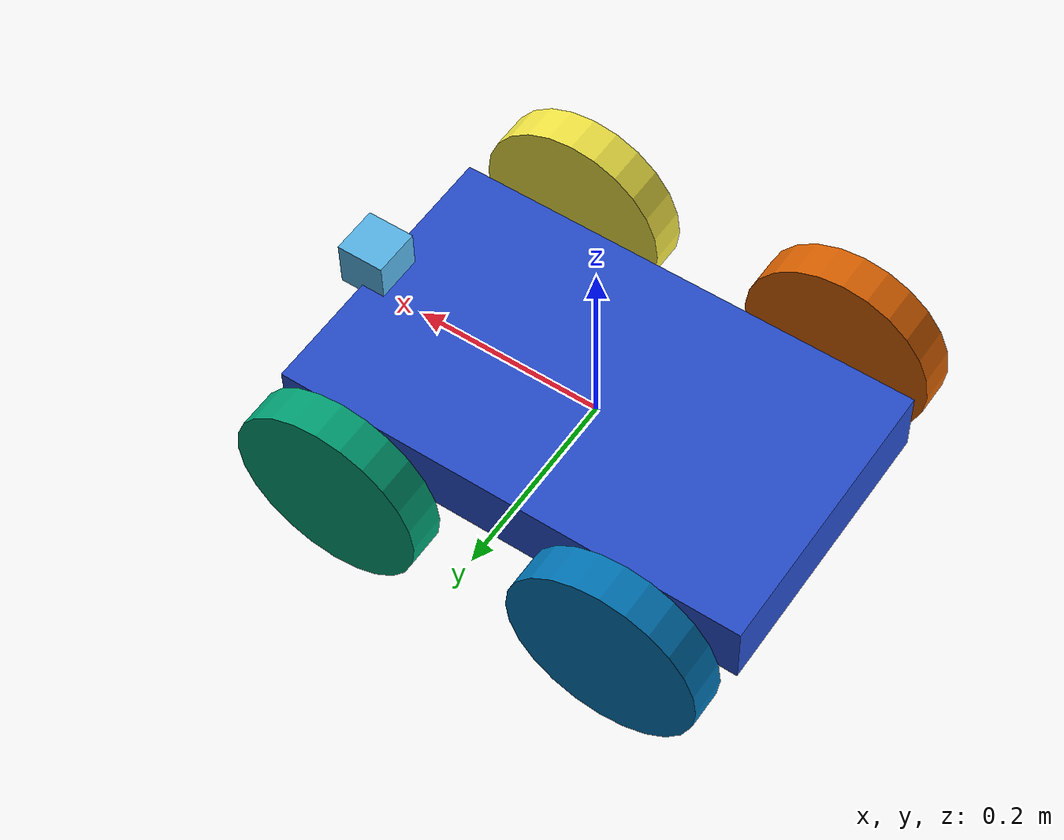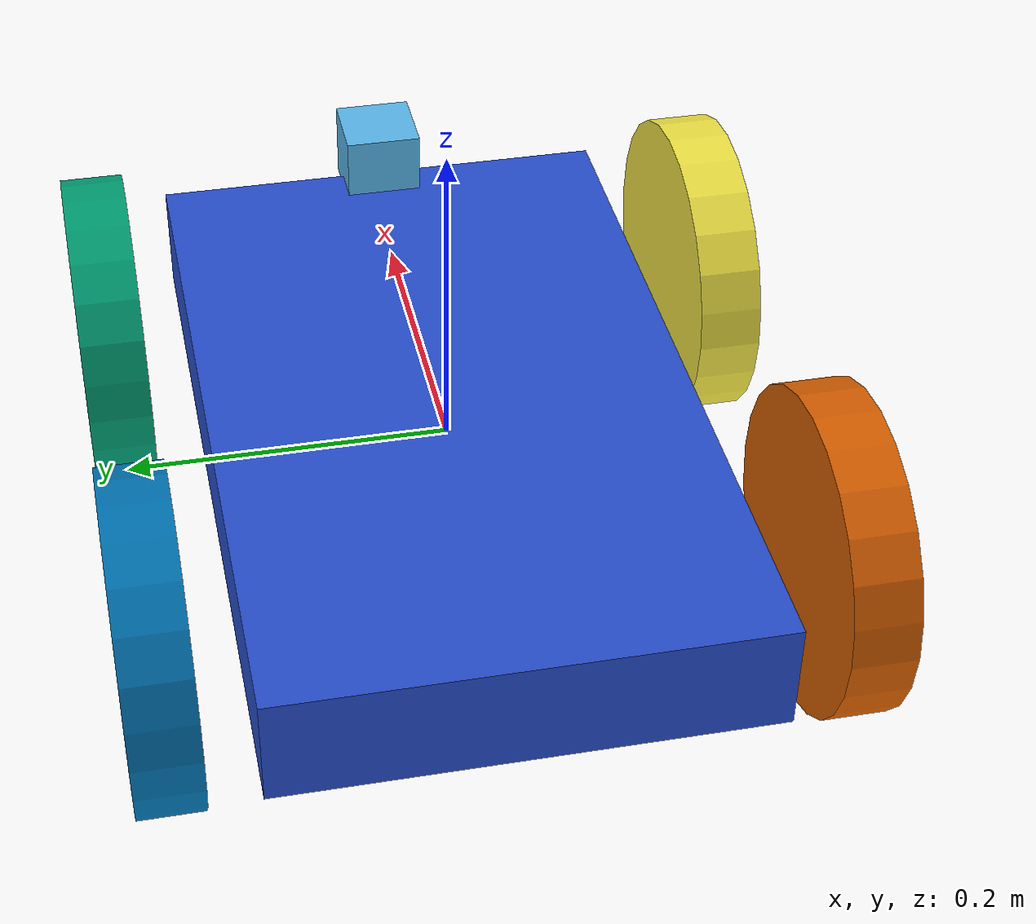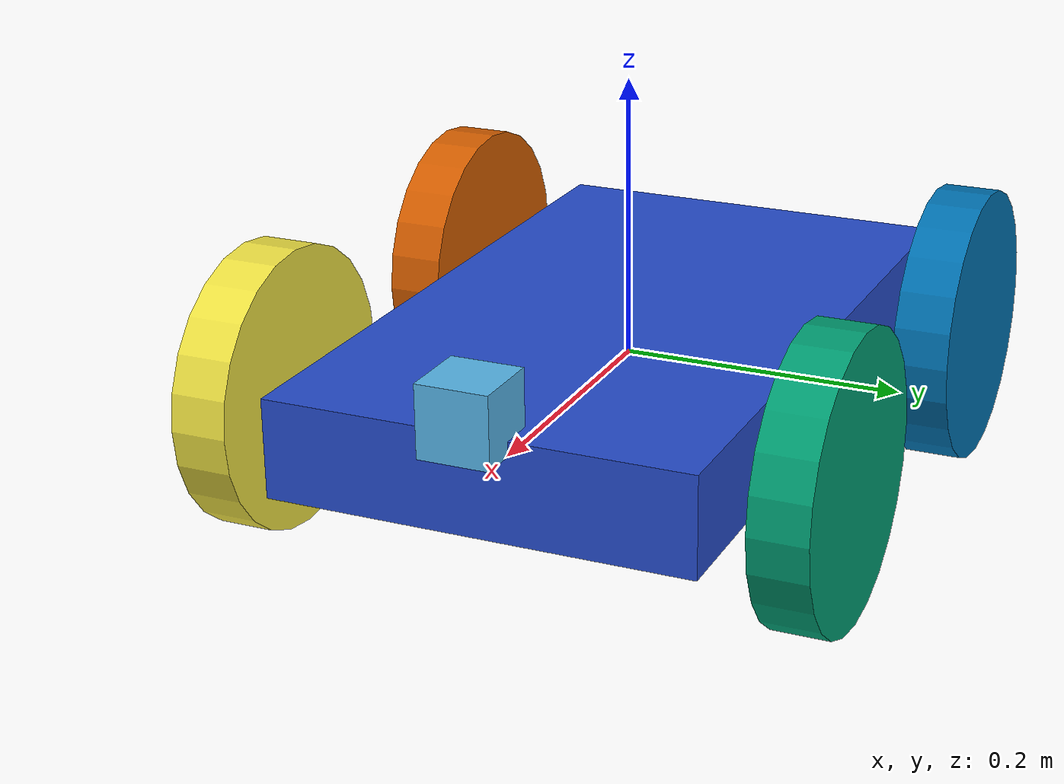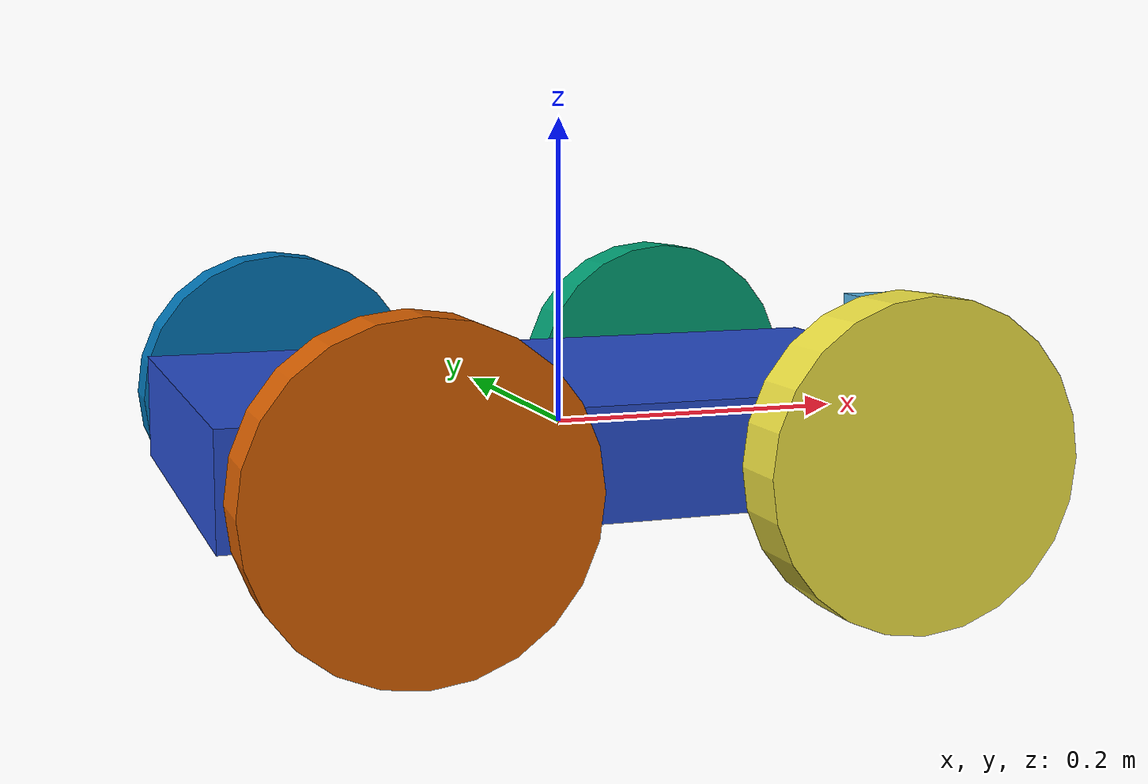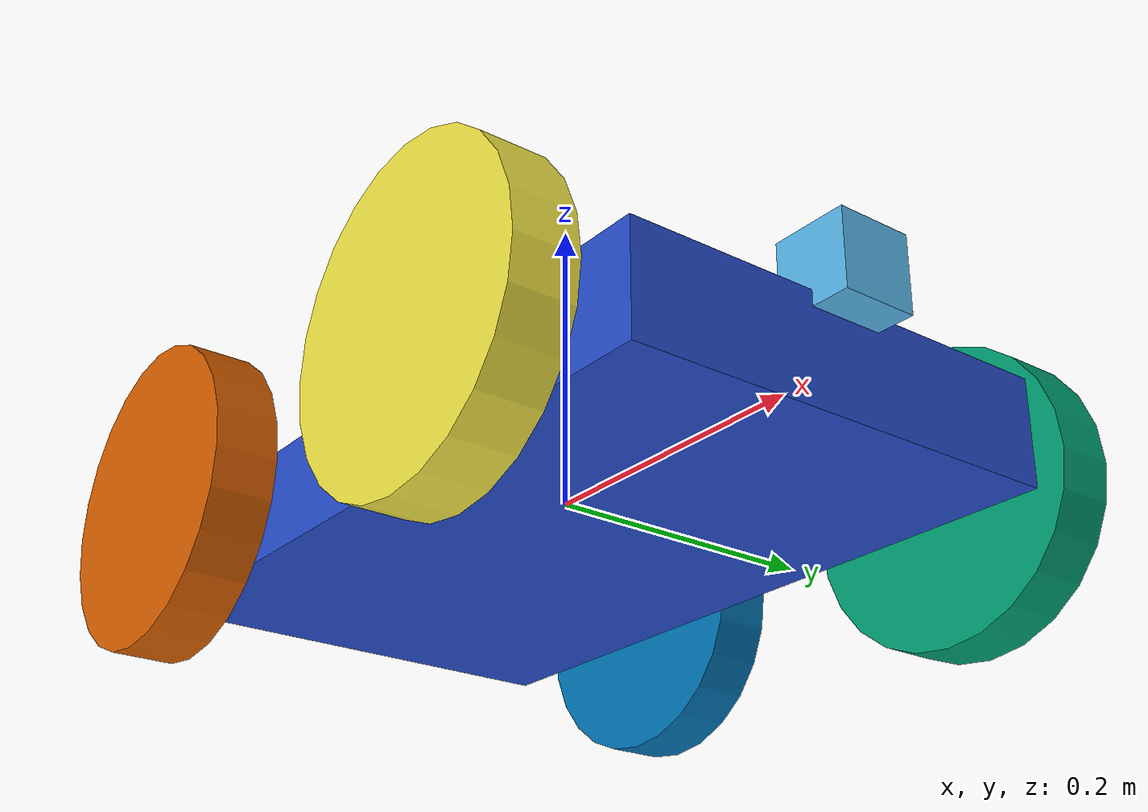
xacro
<?xml version="1.0"?>
<robot name="two_wheel_robot" xmlns:xacro="http://wwww.ros.org/wiki/xacro">

<param name="height" value="0.5 0.3 0.07"/>
<xacro:property name="camera_size" value="0.05"/>

<link name ="chassis">

  <inertial>
      <mass value="5"/>
      <origin rpy="0 0 0" xyz="0 0 0.1"/>
      <inertia ixx="0.0395416666667" ixy="0" ixz="0" iyy="0.106208333333" iyz="0" izz="0.106208333333"/>
    </inertial>

    <collision name="collision_chassis">
      <geometry>
        <box size="0.5 0.3 0.07"/>
      </geometry>
    </collision>

    <visual>
      <origin rpy="0 0 0" xyz="0 0 0"/>
      <geometry>
        <box size="0.5 0.3 0.07"/>
      </geometry>
      <material name="blue"/>
    </visual>

</link>

<link name="camera_link">
    <inertial>
      <mass value="1e-5" />
      <origin xyz="0 0 0" rpy="0 0 0"/>
      <inertia ixx="1e-6" ixy="0" ixz="0" iyy="1e-6" iyz="0" izz="1e-6" />
    </inertial>

  <collision name="camera_collison">
    <geometry>
      <box size="${camera_size} ${camera_size} ${camera_size}"/>

    </geometry>

  </collision>
  <visual name="camera_visual">
    <geometry>
      <box size="${camera_size} ${camera_size} ${camera_size}"/>
    </geometry>
  </visual>
</link>

<joint name="camera_joint" type="fixed">
<axis xyz="0.0 1.0 0.0"/>
<origin xyz="0.25 0 0.05" rpy="0 0 0"/>
  <parent link="chassis"/>
  <child link="camera_link"/>

</joint>

<link name="f_left_wheel">

    <inertial>
      <mass value="0.2"/>
      <origin xyz="0.0 0.0 0.0" rpy="0 1.5707 1.5707"/>
        <inertia ixx="0.000526666666667" ixy="0" ixz="0" iyy="0.000526666666667" iyz="0" izz="0.001"/>
    </inertial>

    <collision name="f_left_wheel_collision">
      <origin xyz="0 0 0" rpy="0 1.5707 1.5707"/>
      <geometry>

          <cylinder radius="0.1" length="0.04"/>
      </geometry>

    </collision>

  <visual name="f_left_wheel_visual">
    <origin xyz="0.0 0.0 0.0" rpy="0 1.5707 1.5707" />
  <geometry>

    <cylinder radius="0.1" length="0.04"/>
  </geometry>

  </visual>

</link>

<joint name="f_left_wheel_joint" type="continuous">

    <origin xyz="0.15 0.2 0.0" rpy="0.0 0.0 0.0"/>
  <axis xyz="0.0 1 0.0" rpy="0.0 0.0 0.0"/>
  <parent link="chassis"/>
  <child link="f_left_wheel"/>
  <limit effort="10000" velocity="1000"/>
        <joint_properties damping="1.0" friction="1.0"/>
</joint>

<link name="f_right_wheel">
  <inertial>

    <mass value="0.2"/>
    <origin xyz="0.0 0.0 0.0" rpy="0 1.5707 1.5707"/>
      <inertia ixx="0.000526666666667" ixy="0" ixz="0" iyy="0.000526666666667" iyz="0" izz="0.001"/>

  </inertial>

  <collision name="f_right_wheel_collision">
    <origin xyz="0 0 0" rpy="0 1.5707 1.5707"/>
    <geometry>

        <cylinder radius="0.1" length="0.04"/>
    </geometry>

  </collision>

  <visual name="f_right_wheel_visual">
    <origin xyz="0.0 0.0 0.0" rpy="0 1.5707 1.5707" />
  <geometry>

    <cylinder radius="0.1" length="0.04"/>
  </geometry>

  </visual>

</link>

<joint name="f_right_wheel_joint" type="continuous">

       <origin xyz="0.15 -0.2 0.0" rpy="0.0 0.0 0.0"/>
  <axis xyz="0.0 1 0.0" rpy="0.0 0.0 0.0"/>
  <parent link="chassis"/>
  <child link="f_right_wheel"/>
  <limit effort="10000" velocity="1000"/>
        <joint_properties damping="1.0" friction="1.0"/>
</joint>

<link name="r_left_wheel">
    <inertial>

      <mass value="0.2"/>
      <origin xyz="0.0 0.0 0.0" rpy="0 1.5707 1.5707"/>
        <inertia ixx="0.000526666666667" ixy="0" ixz="0" iyy="0.000526666666667" iyz="0" izz="0.001"/>

    </inertial>

    <collision name="r_left_wheel_collision">
      <origin xyz="0 0 0" rpy="0 1.5707 1.5707"/>
      <geometry>

          <cylinder radius="0.1" length="0.04"/>
      </geometry>

    </collision>

  <visual name="r_left_wheel_visual">
    <origin xyz="0.0 0.0 0.0" rpy="0 1.5707 1.5707" />
  <geometry>

    <cylinder radius="0.1" length="0.04"/>
  </geometry>

  </visual>

</link>

<joint name="r_left_wheel_joint" type="continuous">

    <origin xyz="-0.15 0.2 0.0" rpy="0.0 0.0 0.0"/>
  <axis xyz="0.0 1 0.0" rpy="0.0 0.0 0.0"/>
  <parent link="chassis"/>
  <child link="r_left_wheel"/>
  <limit effort="10000" velocity="1000"/>
        <joint_properties damping="1.0" friction="1.0"/>
</joint>

<link name="r_right_wheel">
  <inertial>

    <mass value="0.2"/>
    <origin xyz="0.0 0.0 0.0" rpy="0 1.5707 1.5707"/>
      <inertia ixx="0.000526666666667" ixy="0" ixz="0" iyy="0.000526666666667" iyz="0" izz="0.001"/>

  </inertial>

  <collision name="r_right_wheel_collision">
    <origin xyz="0 0 0" rpy="0 1.5707 1.5707"/>
    <geometry>

        <cylinder radius="0.1" length="0.04"/>
    </geometry>

  </collision>

  <visual name="r_right_wheel_visual">
    <origin xyz="0.0 0.0 0.0" rpy="0 1.5707 1.5707" />
  <geometry>

    <cylinder radius="0.1" length="0.04"/>
  </geometry>

  </visual>

</link>

<joint name="r_right_wheel_joint" type="continuous">

       <origin xyz="-0.15 -0.2 0.0" rpy="0.0 0.0 0.0"/>
  <axis xyz="0.0 1 0.0" rpy="0.0 0.0 0.0"/>
  <parent link="chassis"/>
  <child link="r_right_wheel"/>
  <limit effort="10000" velocity="1000"/>
        <joint_properties damping="1.0" friction="1.0"/>
</joint>

<gazebo>
<plugin name="skid_steer_drive_controller" filename="libgazebo_ros_skid_steer_drive.so">
    <updateRate>20</updateRate>
    <robotNamespace>/</robotNamespace>
    <leftFrontJoint>f_left_wheel_joint</leftFrontJoint>
    <rightFrontJoint>f_right_wheel_joint</rightFrontJoint>
    <leftRearJoint>r_left_wheel_joint</leftRearJoint>
    <rightRearJoint>r_right_wheel_joint</rightRearJoint>
    <wheelSeparation>0.6</wheelSeparation>
    <wheelDiameter>0.2</wheelDiameter>
    <robotBaseFrame>chassis</robotBaseFrame>
    <torque>10</torque>
    <commandTopic>cmd_vel</commandTopic>
    <broadcastTF>false</broadcastTF>
        <covariance_x>0.0001</covariance_x>
    <covariance_y>0.0001</covariance_y>
    <covariance_yaw>0.01</covariance_yaw>
  </plugin>
</gazebo>

<gazebo reference="camera_link">

  <sensor type="camera" name="camera1">
    <update_rate> 30.0 </update_rate>
    <camera name="head">
    <horizontal_fov>1.3962634</horizontal_fov>
        <image>
          <width>800</width>
          <height>800</height>
          <format>R8G8B8</format>
        </image>
        <clip>
          <near>0.02</near>
          <far>300</far>
        </clip>
        <noise>
          <type>gaussian</type>
          <!-- Noise is sampled independently per pixel on each frame.
               That pixel's noise value is added to each of its color
               channels, which at that point lie in the range [0,1]. -->
          <mean>0.0</mean>
          <stddev>0.007</stddev>
        </noise>
    </camera>
    <plugin name="camera_controller" filename="libgazebo_ros_camera.so">
        <alwaysOn>true</alwaysOn>
        <updateRate>0.0</updateRate>
        <cameraName>rrbot/camera1</cameraName>
        <imageTopicName>image_raw</imageTopicName>
        <cameraInfoTopicName>camera_info</cameraInfoTopicName>
        <frameName>camera_link</frameName>
        <hackBaseline>0.07</hackBaseline>
        <distortionK1>0.0</distortionK1>
        <distortionK2>0.0</distortionK2>
        <distortionK3>0.0</distortionK3>
        <distortionT1>0.0</distortionT1>
        <distortionT2>0.0</distortionT2>
      </plugin>
  </sensor>
</gazebo>

</robot>
